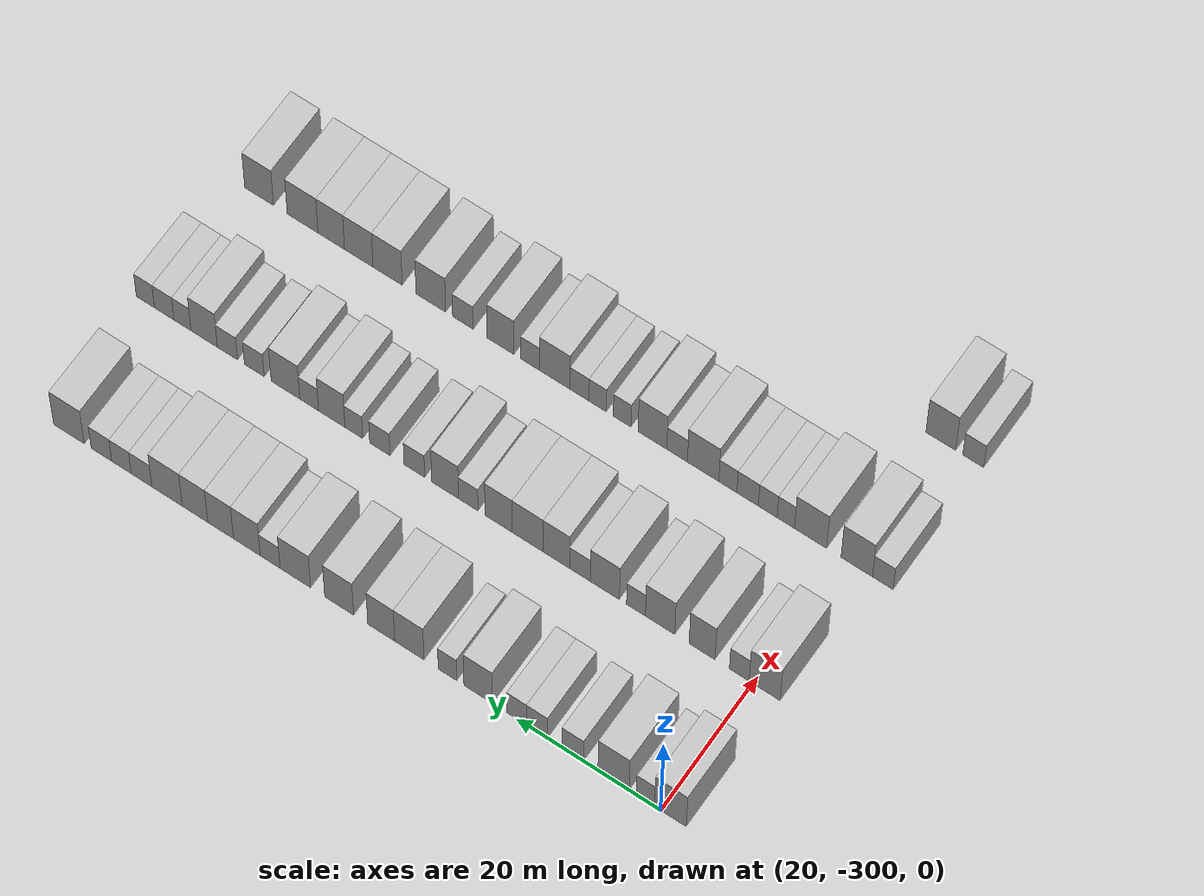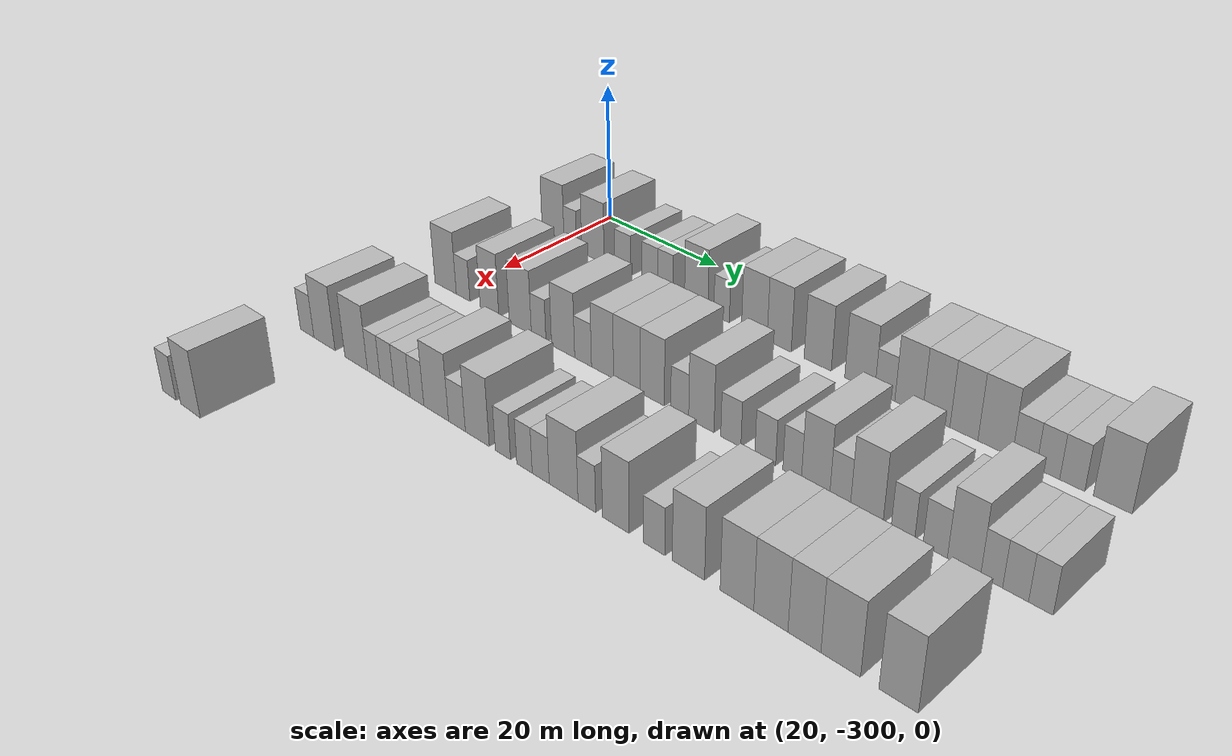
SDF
<sdf version="1.6">
 <world name="default">
  <model name="building_14">
   <static>1</static>
   <pose>25.0000 -301.2562 0 0.000000 0.000000 0.000000</pose>
   <link name="link">
    <pose>0 0 4.50 0 0 0</pose>
    <collision name="collision"><geometry><box><size>10.0000 4.3950 9.0000</size></box></geometry></collision>
    <visual name="visual">
     <cast_shadows>0</cast_shadows>
     <geometry><box><size>10.0000 4.3950 9.0000</size></box></geometry>
     <material>
      <script>
       <uri>model://HANNAS_wall/materials/scripts</uri>
       <uri>model://HANNAS_wall/materials/textures</uri>
       <name>vrc/HANNAS_wall</name>
      </script>
     </material>
    </visual>
   </link>
  </model>
  <model name="building_15">
   <static>1</static>
   <pose>25.0000 -297.8179 0 0.000000 0.000000 0.000000</pose>
   <link name="link">
    <pose>0 0 3.00 0 0 0</pose>
    <collision name="collision"><geometry><box><size>10.0000 2.4814 6.0000</size></box></geometry></collision>
    <visual name="visual">
     <cast_shadows>0</cast_shadows>
     <geometry><box><size>10.0000 2.4814 6.0000</size></box></geometry>
     <material>
      <script>
       <uri>model://HANNAS_wall/materials/scripts</uri>
       <uri>model://HANNAS_wall/materials/textures</uri>
       <name>vrc/HANNAS_wall</name>
      </script>
     </material>
    </visual>
   </link>
  </model>
  <model name="building_16">
   <static>1</static>
   <pose>25.0000 -293.4180 0 0.000000 0.000000 0.000000</pose>
   <link name="link">
    <pose>0 0 4.50 0 0 0</pose>
    <collision name="collision"><geometry><box><size>10.0000 4.3184 9.0000</size></box></geometry></collision>
    <visual name="visual">
     <cast_shadows>0</cast_shadows>
     <geometry><box><size>10.0000 4.3184 9.0000</size></box></geometry>
     <material>
      <script>
       <uri>model://HANNAS_wall/materials/scripts</uri>
       <uri>model://HANNAS_wall/materials/textures</uri>
       <name>vrc/HANNAS_wall</name>
      </script>
     </material>
    </visual>
   </link>
  </model>
  <model name="building_17">
   <static>1</static>
   <pose>25.0000 -287.7597 0 0.000000 0.000000 0.000000</pose>
   <link name="link">
    <pose>0 0 3.00 0 0 0</pose>
    <collision name="collision"><geometry><box><size>10.0000 2.9983 6.0000</size></box></geometry></collision>
    <visual name="visual">
     <cast_shadows>0</cast_shadows>
     <geometry><box><size>10.0000 2.9983 6.0000</size></box></geometry>
     <material>
      <script>
       <uri>model://HANNAS_wall/materials/scripts</uri>
       <uri>model://HANNAS_wall/materials/textures</uri>
       <name>vrc/HANNAS_wall</name>
      </script>
     </material>
    </visual>
   </link>
  </model>
  <model name="building_18">
   <static>1</static>
   <pose>25.0000 -282.8046 0 0.000000 0.000000 0.000000</pose>
   <link name="link">
    <pose>0 0 3.00 0 0 0</pose>
    <collision name="collision"><geometry><box><size>10.0000 2.9120 6.0000</size></box></geometry></collision>
    <visual name="visual">
     <cast_shadows>0</cast_shadows>
     <geometry><box><size>10.0000 2.9120 6.0000</size></box></geometry>
     <material>
      <script>
       <uri>model://HANNAS_wall/materials/scripts</uri>
       <uri>model://HANNAS_wall/materials/textures</uri>
       <name>vrc/HANNAS_wall</name>
      </script>
     </material>
    </visual>
   </link>
  </model>
  <model name="building_19">
   <static>1</static>
   <pose>25.0000 -279.9776 0 0.000000 0.000000 0.000000</pose>
   <link name="link">
    <pose>0 0 3.00 0 0 0</pose>
    <collision name="collision"><geometry><box><size>10.0000 2.7420 6.0000</size></box></geometry></collision>
    <visual name="visual">
     <cast_shadows>0</cast_shadows>
     <geometry><box><size>10.0000 2.7420 6.0000</size></box></geometry>
     <material>
      <script>
       <uri>model://HANNAS_wall/materials/scripts</uri>
       <uri>model://HANNAS_wall/materials/textures</uri>
       <name>vrc/HANNAS_wall</name>
      </script>
     </material>
    </visual>
   </link>
  </model>
  <model name="building_20">
   <static>1</static>
   <pose>25.0000 -274.6007 0 0.000000 0.000000 0.000000</pose>
   <link name="link">
    <pose>0 0 4.50 0 0 0</pose>
    <collision name="collision"><geometry><box><size>10.0000 4.0118 9.0000</size></box></geometry></collision>
    <visual name="visual">
     <cast_shadows>0</cast_shadows>
     <geometry><box><size>10.0000 4.0118 9.0000</size></box></geometry>
     <material>
      <script>
       <uri>model://HANNAS_wall/materials/scripts</uri>
       <uri>model://HANNAS_wall/materials/textures</uri>
       <name>vrc/HANNAS_wall</name>
      </script>
     </material>
    </visual>
   </link>
  </model>
  <model name="building_21">
   <static>1</static>
   <pose>25.0000 -270.2955 0 0.000000 0.000000 0.000000</pose>
   <link name="link">
    <pose>0 0 3.00 0 0 0</pose>
    <collision name="collision"><geometry><box><size>10.0000 2.5986 6.0000</size></box></geometry></collision>
    <visual name="visual">
     <cast_shadows>0</cast_shadows>
     <geometry><box><size>10.0000 2.5986 6.0000</size></box></geometry>
     <material>
      <script>
       <uri>model://HANNAS_wall/materials/scripts</uri>
       <uri>model://HANNAS_wall/materials/textures</uri>
       <name>vrc/HANNAS_wall</name>
      </script>
     </material>
    </visual>
   </link>
  </model>
  <model name="building_22">
   <static>1</static>
   <pose>25.0000 -264.9342 0 0.000000 0.000000 0.000000</pose>
   <link name="link">
    <pose>0 0 4.50 0 0 0</pose>
    <collision name="collision"><geometry><box><size>10.0000 4.1242 9.0000</size></box></geometry></collision>
    <visual name="visual">
     <cast_shadows>0</cast_shadows>
     <geometry><box><size>10.0000 4.1242 9.0000</size></box></geometry>
     <material>
      <script>
       <uri>model://HANNAS_wall/materials/scripts</uri>
       <uri>model://HANNAS_wall/materials/textures</uri>
       <name>vrc/HANNAS_wall</name>
      </script>
     </material>
    </visual>
   </link>
  </model>
  <model name="building_23">
   <static>1</static>
   <pose>25.0000 -260.9729 0 0.000000 0.000000 0.000000</pose>
   <link name="link">
    <pose>0 0 4.50 0 0 0</pose>
    <collision name="collision"><geometry><box><size>10.0000 3.7984 9.0000</size></box></geometry></collision>
    <visual name="visual">
     <cast_shadows>0</cast_shadows>
     <geometry><box><size>10.0000 3.7984 9.0000</size></box></geometry>
     <material>
      <script>
       <uri>model://HANNAS_wall/materials/scripts</uri>
       <uri>model://HANNAS_wall/materials/textures</uri>
       <name>vrc/HANNAS_wall</name>
      </script>
     </material>
    </visual>
   </link>
  </model>
  <model name="building_24">
   <static>1</static>
   <pose>25.0000 -255.0249 0 0.000000 0.000000 0.000000</pose>
   <link name="link">
    <pose>0 0 4.50 0 0 0</pose>
    <collision name="collision"><geometry><box><size>10.0000 4.0975 9.0000</size></box></geometry></collision>
    <visual name="visual">
     <cast_shadows>0</cast_shadows>
     <geometry><box><size>10.0000 4.0975 9.0000</size></box></geometry>
     <material>
      <script>
       <uri>model://HANNAS_wall/materials/scripts</uri>
       <uri>model://HANNAS_wall/materials/textures</uri>
       <name>vrc/HANNAS_wall</name>
      </script>
     </material>
    </visual>
   </link>
  </model>
  <model name="building_25">
   <static>1</static>
   <pose>25.0000 -248.8032 0 0.000000 0.000000 0.000000</pose>
   <link name="link">
    <pose>0 0 4.50 0 0 0</pose>
    <collision name="collision"><geometry><box><size>10.0000 4.3460 9.0000</size></box></geometry></collision>
    <visual name="visual">
     <cast_shadows>0</cast_shadows>
     <geometry><box><size>10.0000 4.3460 9.0000</size></box></geometry>
     <material>
      <script>
       <uri>model://HANNAS_wall/materials/scripts</uri>
       <uri>model://HANNAS_wall/materials/textures</uri>
       <name>vrc/HANNAS_wall</name>
      </script>
     </material>
    </visual>
   </link>
  </model>
  <model name="building_26">
   <static>1</static>
   <pose>25.0000 -245.2129 0 0.000000 0.000000 0.000000</pose>
   <link name="link">
    <pose>0 0 3.00 0 0 0</pose>
    <collision name="collision"><geometry><box><size>10.0000 2.8346 6.0000</size></box></geometry></collision>
    <visual name="visual">
     <cast_shadows>0</cast_shadows>
     <geometry><box><size>10.0000 2.8346 6.0000</size></box></geometry>
     <material>
      <script>
       <uri>model://HANNAS_wall/materials/scripts</uri>
       <uri>model://HANNAS_wall/materials/textures</uri>
       <name>vrc/HANNAS_wall</name>
      </script>
     </material>
    </visual>
   </link>
  </model>
  <model name="building_27">
   <static>1</static>
   <pose>25.0000 -241.8907 0 0.000000 0.000000 0.000000</pose>
   <link name="link">
    <pose>0 0 4.50 0 0 0</pose>
    <collision name="collision"><geometry><box><size>10.0000 3.8098 9.0000</size></box></geometry></collision>
    <visual name="visual">
     <cast_shadows>0</cast_shadows>
     <geometry><box><size>10.0000 3.8098 9.0000</size></box></geometry>
     <material>
      <script>
       <uri>model://HANNAS_wall/materials/scripts</uri>
       <uri>model://HANNAS_wall/materials/textures</uri>
       <name>vrc/HANNAS_wall</name>
      </script>
     </material>
    </visual>
   </link>
  </model>
  <model name="building_28">
   <static>1</static>
   <pose>25.0000 -238.1412 0 0.000000 0.000000 0.000000</pose>
   <link name="link">
    <pose>0 0 4.50 0 0 0</pose>
    <collision name="collision"><geometry><box><size>10.0000 3.6891 9.0000</size></box></geometry></collision>
    <visual name="visual">
     <cast_shadows>0</cast_shadows>
     <geometry><box><size>10.0000 3.6891 9.0000</size></box></geometry>
     <material>
      <script>
       <uri>model://HANNAS_wall/materials/scripts</uri>
       <uri>model://HANNAS_wall/materials/textures</uri>
       <name>vrc/HANNAS_wall</name>
      </script>
     </material>
    </visual>
   </link>
  </model>
  <model name="building_29">
   <static>1</static>
   <pose>25.0000 -234.4674 0 0.000000 0.000000 0.000000</pose>
   <link name="link">
    <pose>0 0 4.50 0 0 0</pose>
    <collision name="collision"><geometry><box><size>10.0000 3.6585 9.0000</size></box></geometry></collision>
    <visual name="visual">
     <cast_shadows>0</cast_shadows>
     <geometry><box><size>10.0000 3.6585 9.0000</size></box></geometry>
     <material>
      <script>
       <uri>model://HANNAS_wall/materials/scripts</uri>
       <uri>model://HANNAS_wall/materials/textures</uri>
       <name>vrc/HANNAS_wall</name>
      </script>
     </material>
    </visual>
   </link>
  </model>
  <model name="building_30">
   <static>1</static>
   <pose>25.0000 -230.4585 0 0.000000 0.000000 0.000000</pose>
   <link name="link">
    <pose>0 0 4.50 0 0 0</pose>
    <collision name="collision"><geometry><box><size>10.0000 4.3592 9.0000</size></box></geometry></collision>
    <visual name="visual">
     <cast_shadows>0</cast_shadows>
     <geometry><box><size>10.0000 4.3592 9.0000</size></box></geometry>
     <material>
      <script>
       <uri>model://HANNAS_wall/materials/scripts</uri>
       <uri>model://HANNAS_wall/materials/textures</uri>
       <name>vrc/HANNAS_wall</name>
      </script>
     </material>
    </visual>
   </link>
  </model>
  <model name="building_31">
   <static>1</static>
   <pose>25.0000 -226.7884 0 0.000000 0.000000 0.000000</pose>
   <link name="link">
    <pose>0 0 3.00 0 0 0</pose>
    <collision name="collision"><geometry><box><size>10.0000 2.9809 6.0000</size></box></geometry></collision>
    <visual name="visual">
     <cast_shadows>0</cast_shadows>
     <geometry><box><size>10.0000 2.9809 6.0000</size></box></geometry>
     <material>
      <script>
       <uri>model://HANNAS_wall/materials/scripts</uri>
       <uri>model://HANNAS_wall/materials/textures</uri>
       <name>vrc/HANNAS_wall</name>
      </script>
     </material>
    </visual>
   </link>
  </model>
  <model name="building_32">
   <static>1</static>
   <pose>25.0000 -223.8885 0 0.000000 0.000000 0.000000</pose>
   <link name="link">
    <pose>0 0 3.00 0 0 0</pose>
    <collision name="collision"><geometry><box><size>10.0000 2.8190 6.0000</size></box></geometry></collision>
    <visual name="visual">
     <cast_shadows>0</cast_shadows>
     <geometry><box><size>10.0000 2.8190 6.0000</size></box></geometry>
     <material>
      <script>
       <uri>model://HANNAS_wall/materials/scripts</uri>
       <uri>model://HANNAS_wall/materials/textures</uri>
       <name>vrc/HANNAS_wall</name>
      </script>
     </material>
    </visual>
   </link>
  </model>
  <model name="building_33">
   <static>1</static>
   <pose>25.0000 -220.9950 0 0.000000 0.000000 0.000000</pose>
   <link name="link">
    <pose>0 0 3.00 0 0 0</pose>
    <collision name="collision"><geometry><box><size>10.0000 2.9680 6.0000</size></box></geometry></collision>
    <visual name="visual">
     <cast_shadows>0</cast_shadows>
     <geometry><box><size>10.0000 2.9680 6.0000</size></box></geometry>
     <material>
      <script>
       <uri>model://HANNAS_wall/materials/scripts</uri>
       <uri>model://HANNAS_wall/materials/textures</uri>
       <name>vrc/HANNAS_wall</name>
      </script>
     </material>
    </visual>
   </link>
  </model>
  <model name="building_34">
   <static>1</static>
   <pose>25.0000 -216.2891 0 0.000000 0.000000 0.000000</pose>
   <link name="link">
    <pose>0 0 4.50 0 0 0</pose>
    <collision name="collision"><geometry><box><size>10.0000 4.4438 9.0000</size></box></geometry></collision>
    <visual name="visual">
     <cast_shadows>0</cast_shadows>
     <geometry><box><size>10.0000 4.4438 9.0000</size></box></geometry>
     <material>
      <script>
       <uri>model://HANNAS_wall/materials/scripts</uri>
       <uri>model://HANNAS_wall/materials/textures</uri>
       <name>vrc/HANNAS_wall</name>
      </script>
     </material>
    </visual>
   </link>
  </model>
  <model name="building_186">
   <static>1</static>
   <pose>44.0000 -301.5533 0 0.000000 0.000000 0.000000</pose>
   <link name="link">
    <pose>0 0 4.50 0 0 0</pose>
    <collision name="collision"><geometry><box><size>10.0000 4.3129 9.0000</size></box></geometry></collision>
    <visual name="visual">
     <cast_shadows>0</cast_shadows>
     <geometry><box><size>10.0000 4.3129 9.0000</size></box></geometry>
     <material>
      <script>
       <uri>model://HANNAS_wall/materials/scripts</uri>
       <uri>model://HANNAS_wall/materials/textures</uri>
       <name>vrc/HANNAS_wall</name>
      </script>
     </material>
    </visual>
   </link>
  </model>
  <model name="building_187">
   <static>1</static>
   <pose>44.0000 -298.0338 0 0.000000 0.000000 0.000000</pose>
   <link name="link">
    <pose>0 0 3.00 0 0 0</pose>
    <collision name="collision"><geometry><box><size>10.0000 2.7262 6.0000</size></box></geometry></collision>
    <visual name="visual">
     <cast_shadows>0</cast_shadows>
     <geometry><box><size>10.0000 2.7262 6.0000</size></box></geometry>
     <material>
      <script>
       <uri>model://HANNAS_wall/materials/scripts</uri>
       <uri>model://HANNAS_wall/materials/textures</uri>
       <name>vrc/HANNAS_wall</name>
      </script>
     </material>
    </visual>
   </link>
  </model>
  <model name="building_188">
   <static>1</static>
   <pose>44.0000 -292.8698 0 0.000000 0.000000 0.000000</pose>
   <link name="link">
    <pose>0 0 4.50 0 0 0</pose>
    <collision name="collision"><geometry><box><size>10.0000 3.6018 9.0000</size></box></geometry></collision>
    <visual name="visual">
     <cast_shadows>0</cast_shadows>
     <geometry><box><size>10.0000 3.6018 9.0000</size></box></geometry>
     <material>
      <script>
       <uri>model://HANNAS_wall/materials/scripts</uri>
       <uri>model://HANNAS_wall/materials/textures</uri>
       <name>vrc/HANNAS_wall</name>
      </script>
     </material>
    </visual>
   </link>
  </model>
  <model name="building_189">
   <static>1</static>
   <pose>44.0000 -287.0259 0 0.000000 0.000000 0.000000</pose>
   <link name="link">
    <pose>0 0 4.50 0 0 0</pose>
    <collision name="collision"><geometry><box><size>10.0000 4.0859 9.0000</size></box></geometry></collision>
    <visual name="visual">
     <cast_shadows>0</cast_shadows>
     <geometry><box><size>10.0000 4.0859 9.0000</size></box></geometry>
     <material>
      <script>
       <uri>model://HANNAS_wall/materials/scripts</uri>
       <uri>model://HANNAS_wall/materials/textures</uri>
       <name>vrc/HANNAS_wall</name>
      </script>
     </material>
    </visual>
   </link>
  </model>
  <model name="building_190">
   <static>1</static>
   <pose>44.0000 -283.6602 0 0.000000 0.000000 0.000000</pose>
   <link name="link">
    <pose>0 0 3.00 0 0 0</pose>
    <collision name="collision"><geometry><box><size>10.0000 2.6455 6.0000</size></box></geometry></collision>
    <visual name="visual">
     <cast_shadows>0</cast_shadows>
     <geometry><box><size>10.0000 2.6455 6.0000</size></box></geometry>
     <material>
      <script>
       <uri>model://HANNAS_wall/materials/scripts</uri>
       <uri>model://HANNAS_wall/materials/textures</uri>
       <name>vrc/HANNAS_wall</name>
      </script>
     </material>
    </visual>
   </link>
  </model>
  <model name="building_191">
   <static>1</static>
   <pose>44.0000 -279.2972 0 0.000000 0.000000 0.000000</pose>
   <link name="link">
    <pose>0 0 4.50 0 0 0</pose>
    <collision name="collision"><geometry><box><size>10.0000 4.0805 9.0000</size></box></geometry></collision>
    <visual name="visual">
     <cast_shadows>0</cast_shadows>
     <geometry><box><size>10.0000 4.0805 9.0000</size></box></geometry>
     <material>
      <script>
       <uri>model://HANNAS_wall/materials/scripts</uri>
       <uri>model://HANNAS_wall/materials/textures</uri>
       <name>vrc/HANNAS_wall</name>
      </script>
     </material>
    </visual>
   </link>
  </model>
  <model name="building_192">
   <static>1</static>
   <pose>44.0000 -275.8101 0 0.000000 0.000000 0.000000</pose>
   <link name="link">
    <pose>0 0 3.00 0 0 0</pose>
    <collision name="collision"><geometry><box><size>10.0000 2.8938 6.0000</size></box></geometry></collision>
    <visual name="visual">
     <cast_shadows>0</cast_shadows>
     <geometry><box><size>10.0000 2.8938 6.0000</size></box></geometry>
     <material>
      <script>
       <uri>model://HANNAS_wall/materials/scripts</uri>
       <uri>model://HANNAS_wall/materials/textures</uri>
       <name>vrc/HANNAS_wall</name>
      </script>
     </material>
    </visual>
   </link>
  </model>
  <model name="building_193">
   <static>1</static>
   <pose>44.0000 -272.5025 0 0.000000 0.000000 0.000000</pose>
   <link name="link">
    <pose>0 0 4.50 0 0 0</pose>
    <collision name="collision"><geometry><box><size>10.0000 3.7213 9.0000</size></box></geometry></collision>
    <visual name="visual">
     <cast_shadows>0</cast_shadows>
     <geometry><box><size>10.0000 3.7213 9.0000</size></box></geometry>
     <material>
      <script>
       <uri>model://HANNAS_wall/materials/scripts</uri>
       <uri>model://HANNAS_wall/materials/textures</uri>
       <name>vrc/HANNAS_wall</name>
      </script>
     </material>
    </visual>
   </link>
  </model>
  <model name="building_194">
   <static>1</static>
   <pose>44.0000 -268.4573 0 0.000000 0.000000 0.000000</pose>
   <link name="link">
    <pose>0 0 4.50 0 0 0</pose>
    <collision name="collision"><geometry><box><size>10.0000 4.3690 9.0000</size></box></geometry></collision>
    <visual name="visual">
     <cast_shadows>0</cast_shadows>
     <geometry><box><size>10.0000 4.3690 9.0000</size></box></geometry>
     <material>
      <script>
       <uri>model://HANNAS_wall/materials/scripts</uri>
       <uri>model://HANNAS_wall/materials/textures</uri>
       <name>vrc/HANNAS_wall</name>
      </script>
     </material>
    </visual>
   </link>
  </model>
  <model name="building_195">
   <static>1</static>
   <pose>44.0000 -264.3526 0 0.000000 0.000000 0.000000</pose>
   <link name="link">
    <pose>0 0 4.50 0 0 0</pose>
    <collision name="collision"><geometry><box><size>10.0000 3.8405 9.0000</size></box></geometry></collision>
    <visual name="visual">
     <cast_shadows>0</cast_shadows>
     <geometry><box><size>10.0000 3.8405 9.0000</size></box></geometry>
     <material>
      <script>
       <uri>model://HANNAS_wall/materials/scripts</uri>
       <uri>model://HANNAS_wall/materials/textures</uri>
       <name>vrc/HANNAS_wall</name>
      </script>
     </material>
    </visual>
   </link>
  </model>
  <model name="building_196">
   <static>1</static>
   <pose>44.0000 -260.0542 0 0.000000 0.000000 0.000000</pose>
   <link name="link">
    <pose>0 0 3.00 0 0 0</pose>
    <collision name="collision"><geometry><box><size>10.0000 2.7563 6.0000</size></box></geometry></collision>
    <visual name="visual">
     <cast_shadows>0</cast_shadows>
     <geometry><box><size>10.0000 2.7563 6.0000</size></box></geometry>
     <material>
      <script>
       <uri>model://HANNAS_wall/materials/scripts</uri>
       <uri>model://HANNAS_wall/materials/textures</uri>
       <name>vrc/HANNAS_wall</name>
      </script>
     </material>
    </visual>
   </link>
  </model>
  <model name="building_197">
   <static>1</static>
   <pose>44.0000 -256.7686 0 0.000000 0.000000 0.000000</pose>
   <link name="link">
    <pose>0 0 4.50 0 0 0</pose>
    <collision name="collision"><geometry><box><size>10.0000 3.8148 9.0000</size></box></geometry></collision>
    <visual name="visual">
     <cast_shadows>0</cast_shadows>
     <geometry><box><size>10.0000 3.8148 9.0000</size></box></geometry>
     <material>
      <script>
       <uri>model://HANNAS_wall/materials/scripts</uri>
       <uri>model://HANNAS_wall/materials/textures</uri>
       <name>vrc/HANNAS_wall</name>
      </script>
     </material>
    </visual>
   </link>
  </model>
  <model name="building_198">
   <static>1</static>
   <pose>44.0000 -252.3925 0 0.000000 0.000000 0.000000</pose>
   <link name="link">
    <pose>0 0 3.00 0 0 0</pose>
    <collision name="collision"><geometry><box><size>10.0000 2.9374 6.0000</size></box></geometry></collision>
    <visual name="visual">
     <cast_shadows>0</cast_shadows>
     <geometry><box><size>10.0000 2.9374 6.0000</size></box></geometry>
     <material>
      <script>
       <uri>model://HANNAS_wall/materials/scripts</uri>
       <uri>model://HANNAS_wall/materials/textures</uri>
       <name>vrc/HANNAS_wall</name>
      </script>
     </material>
    </visual>
   </link>
  </model>
  <model name="building_199">
   <static>1</static>
   <pose>44.0000 -247.4664 0 0.000000 0.000000 0.000000</pose>
   <link name="link">
    <pose>0 0 3.00 0 0 0</pose>
    <collision name="collision"><geometry><box><size>10.0000 2.9149 6.0000</size></box></geometry></collision>
    <visual name="visual">
     <cast_shadows>0</cast_shadows>
     <geometry><box><size>10.0000 2.9149 6.0000</size></box></geometry>
     <material>
      <script>
       <uri>model://HANNAS_wall/materials/scripts</uri>
       <uri>model://HANNAS_wall/materials/textures</uri>
       <name>vrc/HANNAS_wall</name>
      </script>
     </material>
    </visual>
   </link>
  </model>
  <model name="building_200">
   <static>1</static>
   <pose>44.0000 -243.7336 0 0.000000 0.000000 0.000000</pose>
   <link name="link">
    <pose>0 0 3.00 0 0 0</pose>
    <collision name="collision"><geometry><box><size>10.0000 2.5506 6.0000</size></box></geometry></collision>
    <visual name="visual">
     <cast_shadows>0</cast_shadows>
     <geometry><box><size>10.0000 2.5506 6.0000</size></box></geometry>
     <material>
      <script>
       <uri>model://HANNAS_wall/materials/scripts</uri>
       <uri>model://HANNAS_wall/materials/textures</uri>
       <name>vrc/HANNAS_wall</name>
      </script>
     </material>
    </visual>
   </link>
  </model>
  <model name="building_201">
   <static>1</static>
   <pose>44.0000 -240.5596 0 0.000000 0.000000 0.000000</pose>
   <link name="link">
    <pose>0 0 4.50 0 0 0</pose>
    <collision name="collision"><geometry><box><size>10.0000 3.7975 9.0000</size></box></geometry></collision>
    <visual name="visual">
     <cast_shadows>0</cast_shadows>
     <geometry><box><size>10.0000 3.7975 9.0000</size></box></geometry>
     <material>
      <script>
       <uri>model://HANNAS_wall/materials/scripts</uri>
       <uri>model://HANNAS_wall/materials/textures</uri>
       <name>vrc/HANNAS_wall</name>
      </script>
     </material>
    </visual>
   </link>
  </model>
  <model name="building_202">
   <static>1</static>
   <pose>44.0000 -237.3171 0 0.000000 0.000000 0.000000</pose>
   <link name="link">
    <pose>0 0 3.00 0 0 0</pose>
    <collision name="collision"><geometry><box><size>10.0000 2.6875 6.0000</size></box></geometry></collision>
    <visual name="visual">
     <cast_shadows>0</cast_shadows>
     <geometry><box><size>10.0000 2.6875 6.0000</size></box></geometry>
     <material>
      <script>
       <uri>model://HANNAS_wall/materials/scripts</uri>
       <uri>model://HANNAS_wall/materials/textures</uri>
       <name>vrc/HANNAS_wall</name>
      </script>
     </material>
    </visual>
   </link>
  </model>
  <model name="building_203">
   <static>1</static>
   <pose>44.0000 -233.9086 0 0.000000 0.000000 0.000000</pose>
   <link name="link">
    <pose>0 0 4.50 0 0 0</pose>
    <collision name="collision"><geometry><box><size>10.0000 4.1297 9.0000</size></box></geometry></collision>
    <visual name="visual">
     <cast_shadows>0</cast_shadows>
     <geometry><box><size>10.0000 4.1297 9.0000</size></box></geometry>
     <material>
      <script>
       <uri>model://HANNAS_wall/materials/scripts</uri>
       <uri>model://HANNAS_wall/materials/textures</uri>
       <name>vrc/HANNAS_wall</name>
      </script>
     </material>
    </visual>
   </link>
  </model>
  <model name="building_204">
   <static>1</static>
   <pose>44.0000 -229.4083 0 0.000000 0.000000 0.000000</pose>
   <link name="link">
    <pose>0 0 3.00 0 0 0</pose>
    <collision name="collision"><geometry><box><size>10.0000 2.8708 6.0000</size></box></geometry></collision>
    <visual name="visual">
     <cast_shadows>0</cast_shadows>
     <geometry><box><size>10.0000 2.8708 6.0000</size></box></geometry>
     <material>
      <script>
       <uri>model://HANNAS_wall/materials/scripts</uri>
       <uri>model://HANNAS_wall/materials/textures</uri>
       <name>vrc/HANNAS_wall</name>
      </script>
     </material>
    </visual>
   </link>
  </model>
  <model name="building_205">
   <static>1</static>
   <pose>44.0000 -225.5209 0 0.000000 0.000000 0.000000</pose>
   <link name="link">
    <pose>0 0 3.00 0 0 0</pose>
    <collision name="collision"><geometry><box><size>10.0000 2.9041 6.0000</size></box></geometry></collision>
    <visual name="visual">
     <cast_shadows>0</cast_shadows>
     <geometry><box><size>10.0000 2.9041 6.0000</size></box></geometry>
     <material>
      <script>
       <uri>model://HANNAS_wall/materials/scripts</uri>
       <uri>model://HANNAS_wall/materials/textures</uri>
       <name>vrc/HANNAS_wall</name>
      </script>
     </material>
    </visual>
   </link>
  </model>
  <model name="building_206">
   <static>1</static>
   <pose>44.0000 -222.1540 0 0.000000 0.000000 0.000000</pose>
   <link name="link">
    <pose>0 0 4.50 0 0 0</pose>
    <collision name="collision"><geometry><box><size>10.0000 3.8296 9.0000</size></box></geometry></collision>
    <visual name="visual">
     <cast_shadows>0</cast_shadows>
     <geometry><box><size>10.0000 3.8296 9.0000</size></box></geometry>
     <material>
      <script>
       <uri>model://HANNAS_wall/materials/scripts</uri>
       <uri>model://HANNAS_wall/materials/textures</uri>
       <name>vrc/HANNAS_wall</name>
      </script>
     </material>
    </visual>
   </link>
  </model>
  <model name="building_207">
   <static>1</static>
   <pose>44.0000 -218.9987 0 0.000000 0.000000 0.000000</pose>
   <link name="link">
    <pose>0 0 3.00 0 0 0</pose>
    <collision name="collision"><geometry><box><size>10.0000 2.4810 6.0000</size></box></geometry></collision>
    <visual name="visual">
     <cast_shadows>0</cast_shadows>
     <geometry><box><size>10.0000 2.4810 6.0000</size></box></geometry>
     <material>
      <script>
       <uri>model://HANNAS_wall/materials/scripts</uri>
       <uri>model://HANNAS_wall/materials/textures</uri>
       <name>vrc/HANNAS_wall</name>
      </script>
     </material>
    </visual>
   </link>
  </model>
  <model name="building_208">
   <static>1</static>
   <pose>44.0000 -216.3346 0 0.000000 0.000000 0.000000</pose>
   <link name="link">
    <pose>0 0 3.00 0 0 0</pose>
    <collision name="collision"><geometry><box><size>10.0000 2.8474 6.0000</size></box></geometry></collision>
    <visual name="visual">
     <cast_shadows>0</cast_shadows>
     <geometry><box><size>10.0000 2.8474 6.0000</size></box></geometry>
     <material>
      <script>
       <uri>model://HANNAS_wall/materials/scripts</uri>
       <uri>model://HANNAS_wall/materials/textures</uri>
       <name>vrc/HANNAS_wall</name>
      </script>
     </material>
    </visual>
   </link>
  </model>
  <model name="building_209">
   <static>1</static>
   <pose>44.0000 -213.5891 0 0.000000 0.000000 0.000000</pose>
   <link name="link">
    <pose>0 0 3.00 0 0 0</pose>
    <collision name="collision"><geometry><box><size>10.0000 2.6435 6.0000</size></box></geometry></collision>
    <visual name="visual">
     <cast_shadows>0</cast_shadows>
     <geometry><box><size>10.0000 2.6435 6.0000</size></box></geometry>
     <material>
      <script>
       <uri>model://HANNAS_wall/materials/scripts</uri>
       <uri>model://HANNAS_wall/materials/textures</uri>
       <name>vrc/HANNAS_wall</name>
      </script>
     </material>
    </visual>
   </link>
  </model>
  <model name="building_363">
   <static>1</static>
   <pose>63.0000 -305.3760 0 0.000000 0.000000 0.000000</pose>
   <link name="link">
    <pose>0 0 3.00 0 0 0</pose>
    <collision name="collision"><geometry><box><size>10.0000 2.8713 6.0000</size></box></geometry></collision>
    <visual name="visual">
     <cast_shadows>0</cast_shadows>
     <geometry><box><size>10.0000 2.8713 6.0000</size></box></geometry>
     <material>
      <script>
       <uri>model://HANNAS_wall/materials/scripts</uri>
       <uri>model://HANNAS_wall/materials/textures</uri>
       <name>vrc/HANNAS_wall</name>
      </script>
     </material>
    </visual>
   </link>
  </model>
  <model name="building_364">
   <static>1</static>
   <pose>63.0000 -301.7580 0 0.000000 0.000000 0.000000</pose>
   <link name="link">
    <pose>0 0 4.50 0 0 0</pose>
    <collision name="collision"><geometry><box><size>10.0000 4.3647 9.0000</size></box></geometry></collision>
    <visual name="visual">
     <cast_shadows>0</cast_shadows>
     <geometry><box><size>10.0000 4.3647 9.0000</size></box></geometry>
     <material>
      <script>
       <uri>model://HANNAS_wall/materials/scripts</uri>
       <uri>model://HANNAS_wall/materials/textures</uri>
       <name>vrc/HANNAS_wall</name>
      </script>
     </material>
    </visual>
   </link>
  </model>
  <model name="building_365">
   <static>1</static>
   <pose>63.0000 -295.3301 0 0.000000 0.000000 0.000000</pose>
   <link name="link">
    <pose>0 0 4.50 0 0 0</pose>
    <collision name="collision"><geometry><box><size>10.0000 4.4912 9.0000</size></box></geometry></collision>
    <visual name="visual">
     <cast_shadows>0</cast_shadows>
     <geometry><box><size>10.0000 4.4912 9.0000</size></box></geometry>
     <material>
      <script>
       <uri>model://HANNAS_wall/materials/scripts</uri>
       <uri>model://HANNAS_wall/materials/textures</uri>
       <name>vrc/HANNAS_wall</name>
      </script>
     </material>
    </visual>
   </link>
  </model>
  <model name="building_366">
   <static>1</static>
   <pose>63.0000 -291.8712 0 0.000000 0.000000 0.000000</pose>
   <link name="link">
    <pose>0 0 3.00 0 0 0</pose>
    <collision name="collision"><geometry><box><size>10.0000 2.4265 6.0000</size></box></geometry></collision>
    <visual name="visual">
     <cast_shadows>0</cast_shadows>
     <geometry><box><size>10.0000 2.4265 6.0000</size></box></geometry>
     <material>
      <script>
       <uri>model://HANNAS_wall/materials/scripts</uri>
       <uri>model://HANNAS_wall/materials/textures</uri>
       <name>vrc/HANNAS_wall</name>
      </script>
     </material>
    </visual>
   </link>
  </model>
  <model name="building_367">
   <static>1</static>
   <pose>63.0000 -289.3367 0 0.000000 0.000000 0.000000</pose>
   <link name="link">
    <pose>0 0 3.00 0 0 0</pose>
    <collision name="collision"><geometry><box><size>10.0000 2.6427 6.0000</size></box></geometry></collision>
    <visual name="visual">
     <cast_shadows>0</cast_shadows>
     <geometry><box><size>10.0000 2.6427 6.0000</size></box></geometry>
     <material>
      <script>
       <uri>model://HANNAS_wall/materials/scripts</uri>
       <uri>model://HANNAS_wall/materials/textures</uri>
       <name>vrc/HANNAS_wall</name>
      </script>
     </material>
    </visual>
   </link>
  </model>
  <model name="building_368">
   <static>1</static>
   <pose>63.0000 -286.5246 0 0.000000 0.000000 0.000000</pose>
   <link name="link">
    <pose>0 0 3.00 0 0 0</pose>
    <collision name="collision"><geometry><box><size>10.0000 2.9815 6.0000</size></box></geometry></collision>
    <visual name="visual">
     <cast_shadows>0</cast_shadows>
     <geometry><box><size>10.0000 2.9815 6.0000</size></box></geometry>
     <material>
      <script>
       <uri>model://HANNAS_wall/materials/scripts</uri>
       <uri>model://HANNAS_wall/materials/textures</uri>
       <name>vrc/HANNAS_wall</name>
      </script>
     </material>
    </visual>
   </link>
  </model>
  <model name="building_369">
   <static>1</static>
   <pose>63.0000 -283.7560 0 0.000000 0.000000 0.000000</pose>
   <link name="link">
    <pose>0 0 3.00 0 0 0</pose>
    <collision name="collision"><geometry><box><size>10.0000 2.5556 6.0000</size></box></geometry></collision>
    <visual name="visual">
     <cast_shadows>0</cast_shadows>
     <geometry><box><size>10.0000 2.5556 6.0000</size></box></geometry>
     <material>
      <script>
       <uri>model://HANNAS_wall/materials/scripts</uri>
       <uri>model://HANNAS_wall/materials/textures</uri>
       <name>vrc/HANNAS_wall</name>
      </script>
     </material>
    </visual>
   </link>
  </model>
  <model name="building_370">
   <static>1</static>
   <pose>63.0000 -280.2712 0 0.000000 0.000000 0.000000</pose>
   <link name="link">
    <pose>0 0 4.50 0 0 0</pose>
    <collision name="collision"><geometry><box><size>10.0000 4.4140 9.0000</size></box></geometry></collision>
    <visual name="visual">
     <cast_shadows>0</cast_shadows>
     <geometry><box><size>10.0000 4.4140 9.0000</size></box></geometry>
     <material>
      <script>
       <uri>model://HANNAS_wall/materials/scripts</uri>
       <uri>model://HANNAS_wall/materials/textures</uri>
       <name>vrc/HANNAS_wall</name>
      </script>
     </material>
    </visual>
   </link>
  </model>
  <model name="building_371">
   <static>1</static>
   <pose>63.0000 -276.6045 0 0.000000 0.000000 0.000000</pose>
   <link name="link">
    <pose>0 0 3.00 0 0 0</pose>
    <collision name="collision"><geometry><box><size>10.0000 2.9195 6.0000</size></box></geometry></collision>
    <visual name="visual">
     <cast_shadows>0</cast_shadows>
     <geometry><box><size>10.0000 2.9195 6.0000</size></box></geometry>
     <material>
      <script>
       <uri>model://HANNAS_wall/materials/scripts</uri>
       <uri>model://HANNAS_wall/materials/textures</uri>
       <name>vrc/HANNAS_wall</name>
      </script>
     </material>
    </visual>
   </link>
  </model>
  <model name="building_372">
   <static>1</static>
   <pose>63.0000 -273.1196 0 0.000000 0.000000 0.000000</pose>
   <link name="link">
    <pose>0 0 4.50 0 0 0</pose>
    <collision name="collision"><geometry><box><size>10.0000 4.0504 9.0000</size></box></geometry></collision>
    <visual name="visual">
     <cast_shadows>0</cast_shadows>
     <geometry><box><size>10.0000 4.0504 9.0000</size></box></geometry>
     <material>
      <script>
       <uri>model://HANNAS_wall/materials/scripts</uri>
       <uri>model://HANNAS_wall/materials/textures</uri>
       <name>vrc/HANNAS_wall</name>
      </script>
     </material>
    </visual>
   </link>
  </model>
  <model name="building_373">
   <static>1</static>
   <pose>63.0000 -268.8436 0 0.000000 0.000000 0.000000</pose>
   <link name="link">
    <pose>0 0 3.00 0 0 0</pose>
    <collision name="collision"><geometry><box><size>10.0000 2.5015 6.0000</size></box></geometry></collision>
    <visual name="visual">
     <cast_shadows>0</cast_shadows>
     <geometry><box><size>10.0000 2.5015 6.0000</size></box></geometry>
     <material>
      <script>
       <uri>model://HANNAS_wall/materials/scripts</uri>
       <uri>model://HANNAS_wall/materials/textures</uri>
       <name>vrc/HANNAS_wall</name>
      </script>
     </material>
    </visual>
   </link>
  </model>
  <model name="building_374">
   <static>1</static>
   <pose>63.0000 -265.3547 0 0.000000 0.000000 0.000000</pose>
   <link name="link">
    <pose>0 0 3.00 0 0 0</pose>
    <collision name="collision"><geometry><box><size>10.0000 2.4762 6.0000</size></box></geometry></collision>
    <visual name="visual">
     <cast_shadows>0</cast_shadows>
     <geometry><box><size>10.0000 2.4762 6.0000</size></box></geometry>
     <material>
      <script>
       <uri>model://HANNAS_wall/materials/scripts</uri>
       <uri>model://HANNAS_wall/materials/textures</uri>
       <name>vrc/HANNAS_wall</name>
      </script>
     </material>
    </visual>
   </link>
  </model>
  <model name="building_375">
   <static>1</static>
   <pose>63.0000 -262.7815 0 0.000000 0.000000 0.000000</pose>
   <link name="link">
    <pose>0 0 3.00 0 0 0</pose>
    <collision name="collision"><geometry><box><size>10.0000 2.6702 6.0000</size></box></geometry></collision>
    <visual name="visual">
     <cast_shadows>0</cast_shadows>
     <geometry><box><size>10.0000 2.6702 6.0000</size></box></geometry>
     <material>
      <script>
       <uri>model://HANNAS_wall/materials/scripts</uri>
       <uri>model://HANNAS_wall/materials/textures</uri>
       <name>vrc/HANNAS_wall</name>
      </script>
     </material>
    </visual>
   </link>
  </model>
  <model name="building_376">
   <static>1</static>
   <pose>63.0000 -259.2518 0 0.000000 0.000000 0.000000</pose>
   <link name="link">
    <pose>0 0 4.50 0 0 0</pose>
    <collision name="collision"><geometry><box><size>10.0000 4.3893 9.0000</size></box></geometry></collision>
    <visual name="visual">
     <cast_shadows>0</cast_shadows>
     <geometry><box><size>10.0000 4.3893 9.0000</size></box></geometry>
     <material>
      <script>
       <uri>model://HANNAS_wall/materials/scripts</uri>
       <uri>model://HANNAS_wall/materials/textures</uri>
       <name>vrc/HANNAS_wall</name>
      </script>
     </material>
    </visual>
   </link>
  </model>
  <model name="building_377">
   <static>1</static>
   <pose>63.0000 -255.7470 0 0.000000 0.000000 0.000000</pose>
   <link name="link">
    <pose>0 0 3.00 0 0 0</pose>
    <collision name="collision"><geometry><box><size>10.0000 2.6202 6.0000</size></box></geometry></collision>
    <visual name="visual">
     <cast_shadows>0</cast_shadows>
     <geometry><box><size>10.0000 2.6202 6.0000</size></box></geometry>
     <material>
      <script>
       <uri>model://HANNAS_wall/materials/scripts</uri>
       <uri>model://HANNAS_wall/materials/textures</uri>
       <name>vrc/HANNAS_wall</name>
      </script>
     </material>
    </visual>
   </link>
  </model>
  <model name="building_378">
   <static>1</static>
   <pose>63.0000 -251.5204 0 0.000000 0.000000 0.000000</pose>
   <link name="link">
    <pose>0 0 4.50 0 0 0</pose>
    <collision name="collision"><geometry><box><size>10.0000 3.8330 9.0000</size></box></geometry></collision>
    <visual name="visual">
     <cast_shadows>0</cast_shadows>
     <geometry><box><size>10.0000 3.8330 9.0000</size></box></geometry>
     <material>
      <script>
       <uri>model://HANNAS_wall/materials/scripts</uri>
       <uri>model://HANNAS_wall/materials/textures</uri>
       <name>vrc/HANNAS_wall</name>
      </script>
     </material>
    </visual>
   </link>
  </model>
  <model name="building_379">
   <static>1</static>
   <pose>63.0000 -246.1240 0 0.000000 0.000000 0.000000</pose>
   <link name="link">
    <pose>0 0 3.00 0 0 0</pose>
    <collision name="collision"><geometry><box><size>10.0000 2.9600 6.0000</size></box></geometry></collision>
    <visual name="visual">
     <cast_shadows>0</cast_shadows>
     <geometry><box><size>10.0000 2.9600 6.0000</size></box></geometry>
     <material>
      <script>
       <uri>model://HANNAS_wall/materials/scripts</uri>
       <uri>model://HANNAS_wall/materials/textures</uri>
       <name>vrc/HANNAS_wall</name>
      </script>
     </material>
    </visual>
   </link>
  </model>
  <model name="building_380">
   <static>1</static>
   <pose>63.0000 -241.5102 0 0.000000 0.000000 0.000000</pose>
   <link name="link">
    <pose>0 0 4.50 0 0 0</pose>
    <collision name="collision"><geometry><box><size>10.0000 4.2675 9.0000</size></box></geometry></collision>
    <visual name="visual">
     <cast_shadows>0</cast_shadows>
     <geometry><box><size>10.0000 4.2675 9.0000</size></box></geometry>
     <material>
      <script>
       <uri>model://HANNAS_wall/materials/scripts</uri>
       <uri>model://HANNAS_wall/materials/textures</uri>
       <name>vrc/HANNAS_wall</name>
      </script>
     </material>
    </visual>
   </link>
  </model>
  <model name="building_381">
   <static>1</static>
   <pose>63.0000 -235.2664 0 0.000000 0.000000 0.000000</pose>
   <link name="link">
    <pose>0 0 4.50 0 0 0</pose>
    <collision name="collision"><geometry><box><size>10.0000 4.2202 9.0000</size></box></geometry></collision>
    <visual name="visual">
     <cast_shadows>0</cast_shadows>
     <geometry><box><size>10.0000 4.2202 9.0000</size></box></geometry>
     <material>
      <script>
       <uri>model://HANNAS_wall/materials/scripts</uri>
       <uri>model://HANNAS_wall/materials/textures</uri>
       <name>vrc/HANNAS_wall</name>
      </script>
     </material>
    </visual>
   </link>
  </model>
  <model name="building_382">
   <static>1</static>
   <pose>63.0000 -231.0830 0 0.000000 0.000000 0.000000</pose>
   <link name="link">
    <pose>0 0 4.50 0 0 0</pose>
    <collision name="collision"><geometry><box><size>10.0000 4.1467 9.0000</size></box></geometry></collision>
    <visual name="visual">
     <cast_shadows>0</cast_shadows>
     <geometry><box><size>10.0000 4.1467 9.0000</size></box></geometry>
     <material>
      <script>
       <uri>model://HANNAS_wall/materials/scripts</uri>
       <uri>model://HANNAS_wall/materials/textures</uri>
       <name>vrc/HANNAS_wall</name>
      </script>
     </material>
    </visual>
   </link>
  </model>
  <model name="building_383">
   <static>1</static>
   <pose>63.0000 -227.0829 0 0.000000 0.000000 0.000000</pose>
   <link name="link">
    <pose>0 0 4.50 0 0 0</pose>
    <collision name="collision"><geometry><box><size>10.0000 3.8535 9.0000</size></box></geometry></collision>
    <visual name="visual">
     <cast_shadows>0</cast_shadows>
     <geometry><box><size>10.0000 3.8535 9.0000</size></box></geometry>
     <material>
      <script>
       <uri>model://HANNAS_wall/materials/scripts</uri>
       <uri>model://HANNAS_wall/materials/textures</uri>
       <name>vrc/HANNAS_wall</name>
      </script>
     </material>
    </visual>
   </link>
  </model>
  <model name="building_384">
   <static>1</static>
   <pose>63.0000 -222.9160 0 0.000000 0.000000 0.000000</pose>
   <link name="link">
    <pose>0 0 4.50 0 0 0</pose>
    <collision name="collision"><geometry><box><size>10.0000 4.4804 9.0000</size></box></geometry></collision>
    <visual name="visual">
     <cast_shadows>0</cast_shadows>
     <geometry><box><size>10.0000 4.4804 9.0000</size></box></geometry>
     <material>
      <script>
       <uri>model://HANNAS_wall/materials/scripts</uri>
       <uri>model://HANNAS_wall/materials/textures</uri>
       <name>vrc/HANNAS_wall</name>
      </script>
     </material>
    </visual>
   </link>
  </model>
  <model name="building_385">
   <static>1</static>
   <pose>63.0000 -216.5715 0 0.000000 0.000000 0.000000</pose>
   <link name="link">
    <pose>0 0 4.50 0 0 0</pose>
    <collision name="collision"><geometry><box><size>10.0000 4.2087 9.0000</size></box></geometry></collision>
    <visual name="visual">
     <cast_shadows>0</cast_shadows>
     <geometry><box><size>10.0000 4.2087 9.0000</size></box></geometry>
     <material>
      <script>
       <uri>model://HANNAS_wall/materials/scripts</uri>
       <uri>model://HANNAS_wall/materials/textures</uri>
       <name>vrc/HANNAS_wall</name>
      </script>
     </material>
    </visual>
   </link>
  </model>
  <model name="building_536">
   <static>1</static>
   <pose>82.0000 -305.5865 0 0.000000 0.000000 0.000000</pose>
   <link name="link">
    <pose>0 0 3.00 0 0 0</pose>
    <collision name="collision"><geometry><box><size>10.0000 2.9098 6.0000</size></box></geometry></collision>
    <visual name="visual">
     <cast_shadows>0</cast_shadows>
     <geometry><box><size>10.0000 2.9098 6.0000</size></box></geometry>
     <material>
      <script>
       <uri>model://HANNAS_wall/materials/scripts</uri>
       <uri>model://HANNAS_wall/materials/textures</uri>
       <name>vrc/HANNAS_wall</name>
      </script>
     </material>
    </visual>
   </link>
  </model>
  <model name="building_537">
   <static>1</static>
   <pose>82.0000 -301.0578 0 0.000000 0.000000 0.000000</pose>
   <link name="link">
    <pose>0 0 4.50 0 0 0</pose>
    <collision name="collision"><geometry><box><size>10.0000 4.1475 9.0000</size></box></geometry></collision>
    <visual name="visual">
     <cast_shadows>0</cast_shadows>
     <geometry><box><size>10.0000 4.1475 9.0000</size></box></geometry>
     <material>
      <script>
       <uri>model://HANNAS_wall/materials/scripts</uri>
       <uri>model://HANNAS_wall/materials/textures</uri>
       <name>vrc/HANNAS_wall</name>
      </script>
     </material>
    </visual>
   </link>
  </model>
 </world>
</sdf>
